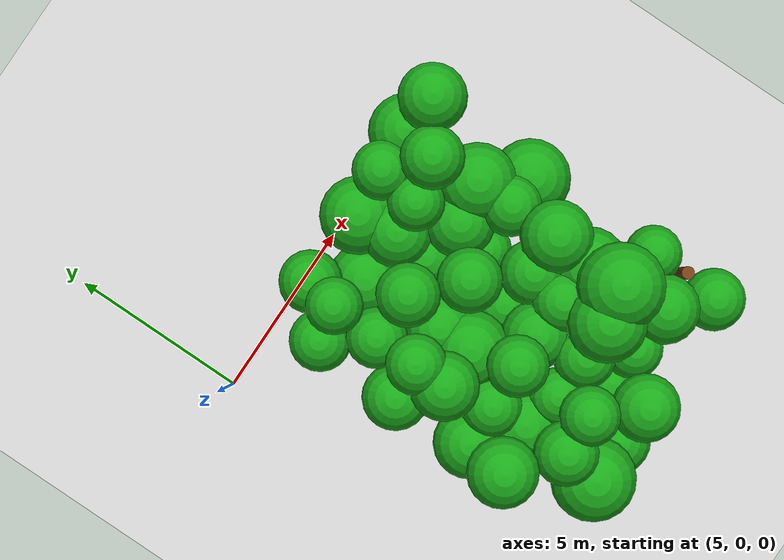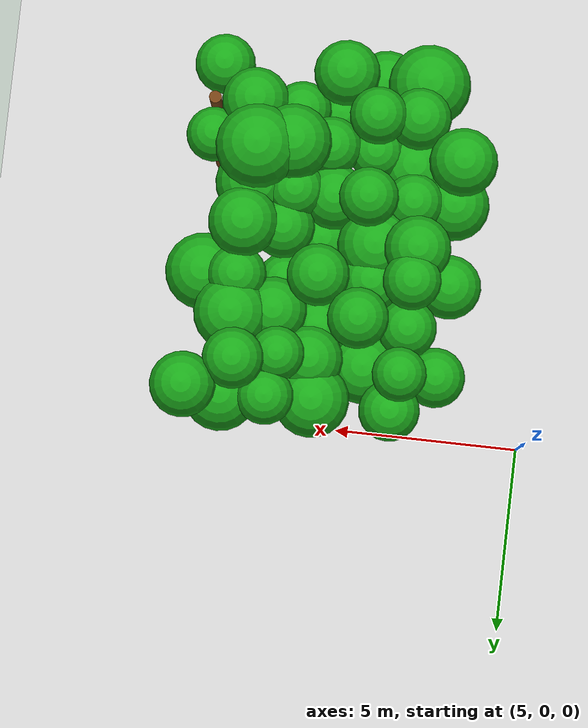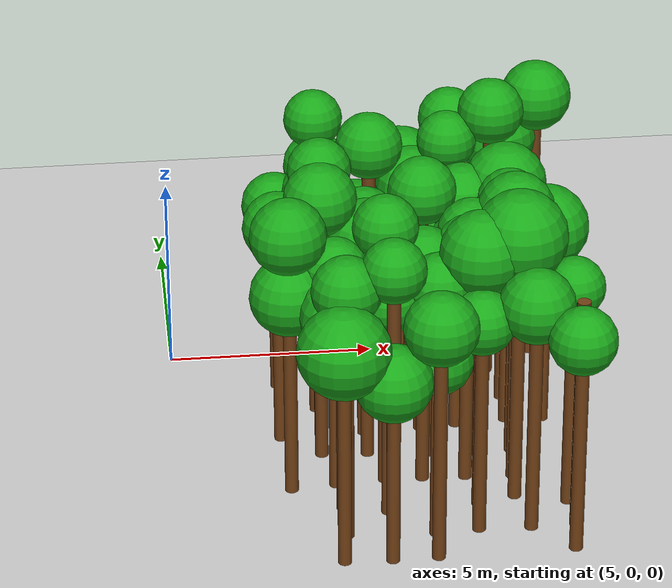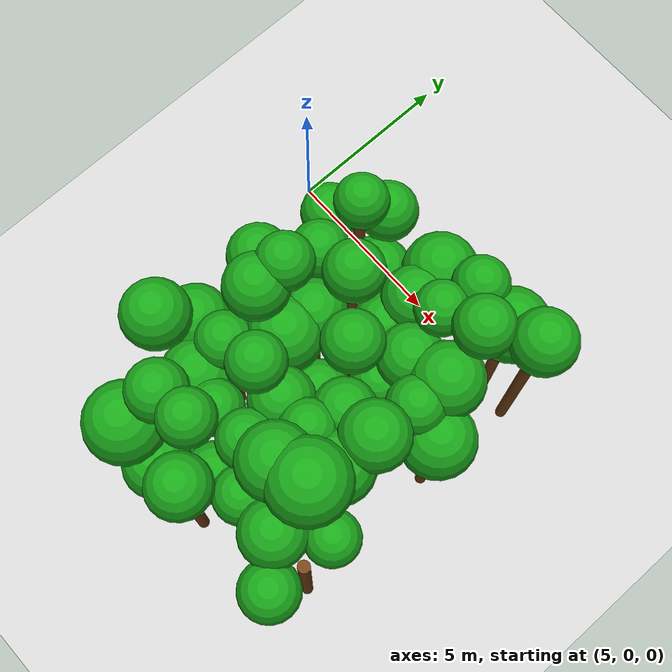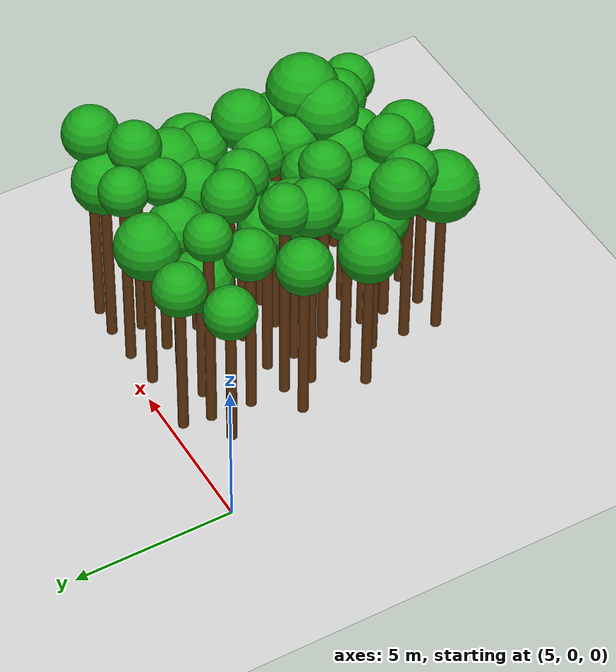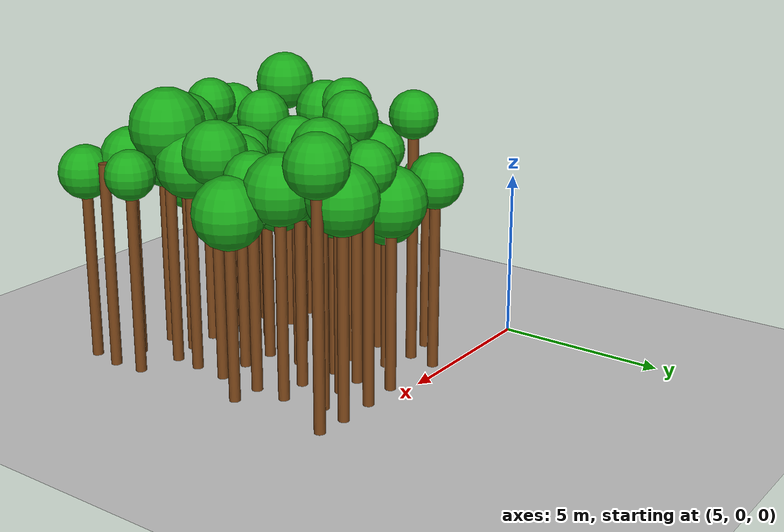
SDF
<sdf version="1.6">
 <world name="forest_world">
  <include><uri>model://sun</uri></include>
  <include><uri>model://ground_plane</uri></include>
  <model name="tree_1868_leaf">
   <static>true</static>
   <pose>7.45 -6.83 7.50 0 0 0</pose>
   <link name="link">
    <collision name="collision"><geometry><sphere><radius>0.88</radius></sphere></geometry></collision>
    <visual name="visual">
     <geometry><sphere><radius>0.88</radius></sphere></geometry>
     <material><ambient>0.05 0.45 0.05 1</ambient><diffuse>0.10 0.65 0.10 1</diffuse></material>
    </visual>
   </link>
  </model>
  <model name="tree_1869_trunk">
   <static>true</static>
   <pose>7.53 -5.94 2.41 0 0 0</pose>
   <link name="link">
    <collision name="collision">
     <geometry><cylinder><radius>0.16</radius><length>4.82</length></cylinder></geometry>
    </collision>
    <visual name="visual">
     <geometry><cylinder><radius>0.16</radius><length>4.82</length></cylinder></geometry>
     <material><ambient>0.35 0.20 0.05 1</ambient><diffuse>0.45 0.25 0.08 1</diffuse></material>
    </visual>
   </link>
  </model>
  <model name="tree_1869_leaf">
   <static>true</static>
   <pose>7.53 -5.94 5.38 0 0 0</pose>
   <link name="link">
    <collision name="collision"><geometry><sphere><radius>0.93</radius></sphere></geometry></collision>
    <visual name="visual">
     <geometry><sphere><radius>0.93</radius></sphere></geometry>
     <material><ambient>0.05 0.45 0.05 1</ambient><diffuse>0.10 0.65 0.10 1</diffuse></material>
    </visual>
   </link>
  </model>
  <model name="tree_1871_trunk">
   <static>true</static>
   <pose>7.45 -3.75 2.72 0 0 0</pose>
   <link name="link">
    <collision name="collision">
     <geometry><cylinder><radius>0.16</radius><length>5.43</length></cylinder></geometry>
    </collision>
    <visual name="visual">
     <geometry><cylinder><radius>0.16</radius><length>5.43</length></cylinder></geometry>
     <material><ambient>0.35 0.20 0.05 1</ambient><diffuse>0.45 0.25 0.08 1</diffuse></material>
    </visual>
   </link>
  </model>
  <model name="tree_1871_leaf">
   <static>true</static>
   <pose>7.45 -3.75 5.94 0 0 0</pose>
   <link name="link">
    <collision name="collision"><geometry><sphere><radius>0.84</radius></sphere></geometry></collision>
    <visual name="visual">
     <geometry><sphere><radius>0.84</radius></sphere></geometry>
     <material><ambient>0.05 0.45 0.05 1</ambient><diffuse>0.10 0.65 0.10 1</diffuse></material>
    </visual>
   </link>
  </model>
  <model name="tree_1873_trunk">
   <static>true</static>
   <pose>7.54 -1.42 2.36 0 0 0</pose>
   <link name="link">
    <collision name="collision">
     <geometry><cylinder><radius>0.16</radius><length>4.71</length></cylinder></geometry>
    </collision>
    <visual name="visual">
     <geometry><cylinder><radius>0.16</radius><length>4.71</length></cylinder></geometry>
     <material><ambient>0.35 0.20 0.05 1</ambient><diffuse>0.45 0.25 0.08 1</diffuse></material>
    </visual>
   </link>
  </model>
  <model name="tree_1873_leaf">
   <static>true</static>
   <pose>7.54 -1.42 5.18 0 0 0</pose>
   <link name="link">
    <collision name="collision"><geometry><sphere><radius>0.79</radius></sphere></geometry></collision>
    <visual name="visual">
     <geometry><sphere><radius>0.79</radius></sphere></geometry>
     <material><ambient>0.05 0.45 0.05 1</ambient><diffuse>0.10 0.65 0.10 1</diffuse></material>
    </visual>
   </link>
  </model>
  <model name="tree_1921_trunk">
   <static>true</static>
   <pose>8.50 -8.96 2.53 0 0 0</pose>
   <link name="link">
    <collision name="collision">
     <geometry><cylinder><radius>0.16</radius><length>5.06</length></cylinder></geometry>
    </collision>
    <visual name="visual">
     <geometry><cylinder><radius>0.16</radius><length>5.06</length></cylinder></geometry>
     <material><ambient>0.35 0.20 0.05 1</ambient><diffuse>0.45 0.25 0.08 1</diffuse></material>
    </visual>
   </link>
  </model>
  <model name="tree_1921_leaf">
   <static>true</static>
   <pose>8.50 -8.96 5.71 0 0 0</pose>
   <link name="link">
    <collision name="collision"><geometry><sphere><radius>1.08</radius></sphere></geometry></collision>
    <visual name="visual">
     <geometry><sphere><radius>1.08</radius></sphere></geometry>
     <material><ambient>0.05 0.45 0.05 1</ambient><diffuse>0.10 0.65 0.10 1</diffuse></material>
    </visual>
   </link>
  </model>
  <model name="tree_1922_trunk">
   <static>true</static>
   <pose>8.66 -7.93 3.09 0 0 0</pose>
   <link name="link">
    <collision name="collision">
     <geometry><cylinder><radius>0.16</radius><length>6.19</length></cylinder></geometry>
    </collision>
    <visual name="visual">
     <geometry><cylinder><radius>0.16</radius><length>6.19</length></cylinder></geometry>
     <material><ambient>0.35 0.20 0.05 1</ambient><diffuse>0.45 0.25 0.08 1</diffuse></material>
    </visual>
   </link>
  </model>
  <model name="tree_1922_leaf">
   <static>true</static>
   <pose>8.66 -7.93 6.67 0 0 0</pose>
   <link name="link">
    <collision name="collision"><geometry><sphere><radius>0.81</radius></sphere></geometry></collision>
    <visual name="visual">
     <geometry><sphere><radius>0.81</radius></sphere></geometry>
     <material><ambient>0.05 0.45 0.05 1</ambient><diffuse>0.10 0.65 0.10 1</diffuse></material>
    </visual>
   </link>
  </model>
  <model name="tree_1923_trunk">
   <static>true</static>
   <pose>8.67 -6.82 2.36 0 0 0</pose>
   <link name="link">
    <collision name="collision">
     <geometry><cylinder><radius>0.16</radius><length>4.73</length></cylinder></geometry>
    </collision>
    <visual name="visual">
     <geometry><cylinder><radius>0.16</radius><length>4.73</length></cylinder></geometry>
     <material><ambient>0.35 0.20 0.05 1</ambient><diffuse>0.45 0.25 0.08 1</diffuse></material>
    </visual>
   </link>
  </model>
  <model name="tree_1923_leaf">
   <static>true</static>
   <pose>8.67 -6.82 5.32 0 0 0</pose>
   <link name="link">
    <collision name="collision"><geometry><sphere><radius>0.99</radius></sphere></geometry></collision>
    <visual name="visual">
     <geometry><sphere><radius>0.99</radius></sphere></geometry>
     <material><ambient>0.05 0.45 0.05 1</ambient><diffuse>0.10 0.65 0.10 1</diffuse></material>
    </visual>
   </link>
  </model>
  <model name="tree_1924_trunk">
   <static>true</static>
   <pose>8.59 -5.84 2.75 0 0 0</pose>
   <link name="link">
    <collision name="collision">
     <geometry><cylinder><radius>0.16</radius><length>5.50</length></cylinder></geometry>
    </collision>
    <visual name="visual">
     <geometry><cylinder><radius>0.16</radius><length>5.50</length></cylinder></geometry>
     <material><ambient>0.35 0.20 0.05 1</ambient><diffuse>0.45 0.25 0.08 1</diffuse></material>
    </visual>
   </link>
  </model>
  <model name="tree_1924_leaf">
   <static>true</static>
   <pose>8.59 -5.84 5.96 0 0 0</pose>
   <link name="link">
    <collision name="collision"><geometry><sphere><radius>0.77</radius></sphere></geometry></collision>
    <visual name="visual">
     <geometry><sphere><radius>0.77</radius></sphere></geometry>
     <material><ambient>0.05 0.45 0.05 1</ambient><diffuse>0.10 0.65 0.10 1</diffuse></material>
    </visual>
   </link>
  </model>
  <model name="tree_1925_trunk">
   <static>true</static>
   <pose>8.37 -4.54 3.29 0 0 0</pose>
   <link name="link">
    <collision name="collision">
     <geometry><cylinder><radius>0.16</radius><length>6.57</length></cylinder></geometry>
    </collision>
    <visual name="visual">
     <geometry><cylinder><radius>0.16</radius><length>6.57</length></cylinder></geometry>
     <material><ambient>0.35 0.20 0.05 1</ambient><diffuse>0.45 0.25 0.08 1</diffuse></material>
    </visual>
   </link>
  </model>
  <model name="tree_1925_leaf">
   <static>true</static>
   <pose>8.37 -4.54 7.09 0 0 0</pose>
   <link name="link">
    <collision name="collision"><geometry><sphere><radius>0.86</radius></sphere></geometry></collision>
    <visual name="visual">
     <geometry><sphere><radius>0.86</radius></sphere></geometry>
     <material><ambient>0.05 0.45 0.05 1</ambient><diffuse>0.10 0.65 0.10 1</diffuse></material>
    </visual>
   </link>
  </model>
  <model name="tree_1926_trunk">
   <static>true</static>
   <pose>8.43 -3.68 3.47 0 0 0</pose>
   <link name="link">
    <collision name="collision">
     <geometry><cylinder><radius>0.16</radius><length>6.93</length></cylinder></geometry>
    </collision>
    <visual name="visual">
     <geometry><cylinder><radius>0.16</radius><length>6.93</length></cylinder></geometry>
     <material><ambient>0.35 0.20 0.05 1</ambient><diffuse>0.45 0.25 0.08 1</diffuse></material>
    </visual>
   </link>
  </model>
  <model name="tree_1926_leaf">
   <static>true</static>
   <pose>8.43 -3.68 7.38 0 0 0</pose>
   <link name="link">
    <collision name="collision"><geometry><sphere><radius>0.75</radius></sphere></geometry></collision>
    <visual name="visual">
     <geometry><sphere><radius>0.75</radius></sphere></geometry>
     <material><ambient>0.05 0.45 0.05 1</ambient><diffuse>0.10 0.65 0.10 1</diffuse></material>
    </visual>
   </link>
  </model>
  <model name="tree_1927_trunk">
   <static>true</static>
   <pose>8.41 -2.55 2.85 0 0 0</pose>
   <link name="link">
    <collision name="collision">
     <geometry><cylinder><radius>0.16</radius><length>5.70</length></cylinder></geometry>
    </collision>
    <visual name="visual">
     <geometry><cylinder><radius>0.16</radius><length>5.70</length></cylinder></geometry>
     <material><ambient>0.35 0.20 0.05 1</ambient><diffuse>0.45 0.25 0.08 1</diffuse></material>
    </visual>
   </link>
  </model>
  <model name="tree_1927_leaf">
   <static>true</static>
   <pose>8.41 -2.55 6.16 0 0 0</pose>
   <link name="link">
    <collision name="collision"><geometry><sphere><radius>0.77</radius></sphere></geometry></collision>
    <visual name="visual">
     <geometry><sphere><radius>0.77</radius></sphere></geometry>
     <material><ambient>0.05 0.45 0.05 1</ambient><diffuse>0.10 0.65 0.10 1</diffuse></material>
    </visual>
   </link>
  </model>
  <model name="tree_1928_trunk">
   <static>true</static>
   <pose>8.50 -1.27 3.49 0 0 0</pose>
   <link name="link">
    <collision name="collision">
     <geometry><cylinder><radius>0.16</radius><length>6.98</length></cylinder></geometry>
    </collision>
    <visual name="visual">
     <geometry><cylinder><radius>0.16</radius><length>6.98</length></cylinder></geometry>
     <material><ambient>0.35 0.20 0.05 1</ambient><diffuse>0.45 0.25 0.08 1</diffuse></material>
    </visual>
   </link>
  </model>
  <model name="tree_1928_leaf">
   <static>true</static>
   <pose>8.50 -1.27 7.40 0 0 0</pose>
   <link name="link">
    <collision name="collision"><geometry><sphere><radius>0.70</radius></sphere></geometry></collision>
    <visual name="visual">
     <geometry><sphere><radius>0.70</radius></sphere></geometry>
     <material><ambient>0.05 0.45 0.05 1</ambient><diffuse>0.10 0.65 0.10 1</diffuse></material>
    </visual>
   </link>
  </model>
  <model name="tree_1929_trunk">
   <static>true</static>
   <pose>8.64 -0.41 2.58 0 0 0</pose>
   <link name="link">
    <collision name="collision">
     <geometry><cylinder><radius>0.16</radius><length>5.16</length></cylinder></geometry>
    </collision>
    <visual name="visual">
     <geometry><cylinder><radius>0.16</radius><length>5.16</length></cylinder></geometry>
     <material><ambient>0.35 0.20 0.05 1</ambient><diffuse>0.45 0.25 0.08 1</diffuse></material>
    </visual>
   </link>
  </model>
  <model name="tree_1929_leaf">
   <static>true</static>
   <pose>8.64 -0.41 5.64 0 0 0</pose>
   <link name="link">
    <collision name="collision"><geometry><sphere><radius>0.80</radius></sphere></geometry></collision>
    <visual name="visual">
     <geometry><sphere><radius>0.80</radius></sphere></geometry>
     <material><ambient>0.05 0.45 0.05 1</ambient><diffuse>0.10 0.65 0.10 1</diffuse></material>
    </visual>
   </link>
  </model>
  <model name="tree_1976_trunk">
   <static>true</static>
   <pose>9.61 -9.00 2.15 0 0 0</pose>
   <link name="link">
    <collision name="collision">
     <geometry><cylinder><radius>0.16</radius><length>4.31</length></cylinder></geometry>
    </collision>
    <visual name="visual">
     <geometry><cylinder><radius>0.16</radius><length>4.31</length></cylinder></geometry>
     <material><ambient>0.35 0.20 0.05 1</ambient><diffuse>0.45 0.25 0.08 1</diffuse></material>
    </visual>
   </link>
  </model>
  <model name="tree_1976_leaf">
   <static>true</static>
   <pose>9.61 -9.00 4.85 0 0 0</pose>
   <link name="link">
    <collision name="collision"><geometry><sphere><radius>0.90</radius></sphere></geometry></collision>
    <visual name="visual">
     <geometry><sphere><radius>0.90</radius></sphere></geometry>
     <material><ambient>0.05 0.45 0.05 1</ambient><diffuse>0.10 0.65 0.10 1</diffuse></material>
    </visual>
   </link>
  </model>
  <model name="tree_1977_trunk">
   <static>true</static>
   <pose>9.73 -7.85 3.31 0 0 0</pose>
   <link name="link">
    <collision name="collision">
     <geometry><cylinder><radius>0.16</radius><length>6.63</length></cylinder></geometry>
    </collision>
    <visual name="visual">
     <geometry><cylinder><radius>0.16</radius><length>6.63</length></cylinder></geometry>
     <material><ambient>0.35 0.20 0.05 1</ambient><diffuse>0.45 0.25 0.08 1</diffuse></material>
    </visual>
   </link>
  </model>
  <model name="tree_1977_leaf">
   <static>true</static>
   <pose>9.73 -7.85 7.08 0 0 0</pose>
   <link name="link">
    <collision name="collision"><geometry><sphere><radius>0.75</radius></sphere></geometry></collision>
    <visual name="visual">
     <geometry><sphere><radius>0.75</radius></sphere></geometry>
     <material><ambient>0.05 0.45 0.05 1</ambient><diffuse>0.10 0.65 0.10 1</diffuse></material>
    </visual>
   </link>
  </model>
  <model name="tree_1978_trunk">
   <static>true</static>
   <pose>9.70 -7.07 2.68 0 0 0</pose>
   <link name="link">
    <collision name="collision">
     <geometry><cylinder><radius>0.16</radius><length>5.36</length></cylinder></geometry>
    </collision>
    <visual name="visual">
     <geometry><cylinder><radius>0.16</radius><length>5.36</length></cylinder></geometry>
     <material><ambient>0.35 0.20 0.05 1</ambient><diffuse>0.45 0.25 0.08 1</diffuse></material>
    </visual>
   </link>
  </model>
  <model name="tree_1978_leaf">
   <static>true</static>
   <pose>9.70 -7.07 5.80 0 0 0</pose>
   <link name="link">
    <collision name="collision"><geometry><sphere><radius>0.73</radius></sphere></geometry></collision>
    <visual name="visual">
     <geometry><sphere><radius>0.73</radius></sphere></geometry>
     <material><ambient>0.05 0.45 0.05 1</ambient><diffuse>0.10 0.65 0.10 1</diffuse></material>
    </visual>
   </link>
  </model>
  <model name="tree_1979_trunk">
   <static>true</static>
   <pose>9.76 -5.75 3.25 0 0 0</pose>
   <link name="link">
    <collision name="collision">
     <geometry><cylinder><radius>0.16</radius><length>6.50</length></cylinder></geometry>
    </collision>
    <visual name="visual">
     <geometry><cylinder><radius>0.16</radius><length>6.50</length></cylinder></geometry>
     <material><ambient>0.35 0.20 0.05 1</ambient><diffuse>0.45 0.25 0.08 1</diffuse></material>
    </visual>
   </link>
  </model>
  <model name="tree_1979_leaf">
   <static>true</static>
   <pose>9.76 -5.75 6.97 0 0 0</pose>
   <link name="link">
    <collision name="collision"><geometry><sphere><radius>0.77</radius></sphere></geometry></collision>
    <visual name="visual">
     <geometry><sphere><radius>0.77</radius></sphere></geometry>
     <material><ambient>0.05 0.45 0.05 1</ambient><diffuse>0.10 0.65 0.10 1</diffuse></material>
    </visual>
   </link>
  </model>
  <model name="tree_1980_trunk">
   <static>true</static>
   <pose>9.46 -4.61 2.69 0 0 0</pose>
   <link name="link">
    <collision name="collision">
     <geometry><cylinder><radius>0.16</radius><length>5.37</length></cylinder></geometry>
    </collision>
    <visual name="visual">
     <geometry><cylinder><radius>0.16</radius><length>5.37</length></cylinder></geometry>
     <material><ambient>0.35 0.20 0.05 1</ambient><diffuse>0.45 0.25 0.08 1</diffuse></material>
    </visual>
   </link>
  </model>
  <model name="tree_1980_leaf">
   <static>true</static>
   <pose>9.46 -4.61 5.97 0 0 0</pose>
   <link name="link">
    <collision name="collision"><geometry><sphere><radius>0.99</radius></sphere></geometry></collision>
    <visual name="visual">
     <geometry><sphere><radius>0.99</radius></sphere></geometry>
     <material><ambient>0.05 0.45 0.05 1</ambient><diffuse>0.10 0.65 0.10 1</diffuse></material>
    </visual>
   </link>
  </model>
  <model name="tree_1981_trunk">
   <static>true</static>
   <pose>9.47 -3.70 2.69 0 0 0</pose>
   <link name="link">
    <collision name="collision">
     <geometry><cylinder><radius>0.16</radius><length>5.37</length></cylinder></geometry>
    </collision>
    <visual name="visual">
     <geometry><cylinder><radius>0.16</radius><length>5.37</length></cylinder></geometry>
     <material><ambient>0.35 0.20 0.05 1</ambient><diffuse>0.45 0.25 0.08 1</diffuse></material>
    </visual>
   </link>
  </model>
  <model name="tree_1981_leaf">
   <static>true</static>
   <pose>9.47 -3.70 5.89 0 0 0</pose>
   <link name="link">
    <collision name="collision"><geometry><sphere><radius>0.87</radius></sphere></geometry></collision>
    <visual name="visual">
     <geometry><sphere><radius>0.87</radius></sphere></geometry>
     <material><ambient>0.05 0.45 0.05 1</ambient><diffuse>0.10 0.65 0.10 1</diffuse></material>
    </visual>
   </link>
  </model>
  <model name="tree_1982_trunk">
   <static>true</static>
   <pose>9.70 -2.59 3.43 0 0 0</pose>
   <link name="link">
    <collision name="collision">
     <geometry><cylinder><radius>0.16</radius><length>6.86</length></cylinder></geometry>
    </collision>
    <visual name="visual">
     <geometry><cylinder><radius>0.16</radius><length>6.86</length></cylinder></geometry>
     <material><ambient>0.35 0.20 0.05 1</ambient><diffuse>0.45 0.25 0.08 1</diffuse></material>
    </visual>
   </link>
  </model>
  <model name="tree_1982_leaf">
   <static>true</static>
   <pose>9.70 -2.59 7.34 0 0 0</pose>
   <link name="link">
    <collision name="collision"><geometry><sphere><radius>0.79</radius></sphere></geometry></collision>
    <visual name="visual">
     <geometry><sphere><radius>0.79</radius></sphere></geometry>
     <material><ambient>0.05 0.45 0.05 1</ambient><diffuse>0.10 0.65 0.10 1</diffuse></material>
    </visual>
   </link>
  </model>
  <model name="tree_1983_trunk">
   <static>true</static>
   <pose>9.45 -1.51 2.08 0 0 0</pose>
   <link name="link">
    <collision name="collision">
     <geometry><cylinder><radius>0.16</radius><length>4.17</length></cylinder></geometry>
    </collision>
    <visual name="visual">
     <geometry><cylinder><radius>0.16</radius><length>4.17</length></cylinder></geometry>
     <material><ambient>0.35 0.20 0.05 1</ambient><diffuse>0.45 0.25 0.08 1</diffuse></material>
    </visual>
   </link>
  </model>
  <model name="tree_1983_leaf">
   <static>true</static>
   <pose>9.45 -1.51 4.74 0 0 0</pose>
   <link name="link">
    <collision name="collision"><geometry><sphere><radius>0.96</radius></sphere></geometry></collision>
    <visual name="visual">
     <geometry><sphere><radius>0.96</radius></sphere></geometry>
     <material><ambient>0.05 0.45 0.05 1</ambient><diffuse>0.10 0.65 0.10 1</diffuse></material>
    </visual>
   </link>
  </model>
  <model name="tree_2031_trunk">
   <static>true</static>
   <pose>10.67 -8.99 2.85 0 0 0</pose>
   <link name="link">
    <collision name="collision">
     <geometry><cylinder><radius>0.16</radius><length>5.70</length></cylinder></geometry>
    </collision>
    <visual name="visual">
     <geometry><cylinder><radius>0.16</radius><length>5.70</length></cylinder></geometry>
     <material><ambient>0.35 0.20 0.05 1</ambient><diffuse>0.45 0.25 0.08 1</diffuse></material>
    </visual>
   </link>
  </model>
  <model name="tree_2031_leaf">
   <static>true</static>
   <pose>10.67 -8.99 6.21 0 0 0</pose>
   <link name="link">
    <collision name="collision"><geometry><sphere><radius>0.86</radius></sphere></geometry></collision>
    <visual name="visual">
     <geometry><sphere><radius>0.86</radius></sphere></geometry>
     <material><ambient>0.05 0.45 0.05 1</ambient><diffuse>0.10 0.65 0.10 1</diffuse></material>
    </visual>
   </link>
  </model>
  <model name="tree_2032_trunk">
   <static>true</static>
   <pose>10.72 -8.06 2.16 0 0 0</pose>
   <link name="link">
    <collision name="collision">
     <geometry><cylinder><radius>0.16</radius><length>4.31</length></cylinder></geometry>
    </collision>
    <visual name="visual">
     <geometry><cylinder><radius>0.16</radius><length>4.31</length></cylinder></geometry>
     <material><ambient>0.35 0.20 0.05 1</ambient><diffuse>0.45 0.25 0.08 1</diffuse></material>
    </visual>
   </link>
  </model>
  <model name="tree_2032_leaf">
   <static>true</static>
   <pose>10.72 -8.06 4.80 0 0 0</pose>
   <link name="link">
    <collision name="collision"><geometry><sphere><radius>0.81</radius></sphere></geometry></collision>
    <visual name="visual">
     <geometry><sphere><radius>0.81</radius></sphere></geometry>
     <material><ambient>0.05 0.45 0.05 1</ambient><diffuse>0.10 0.65 0.10 1</diffuse></material>
    </visual>
   </link>
  </model>
  <model name="tree_2033_trunk">
   <static>true</static>
   <pose>10.86 -7.05 2.82 0 0 0</pose>
   <link name="link">
    <collision name="collision">
     <geometry><cylinder><radius>0.16</radius><length>5.65</length></cylinder></geometry>
    </collision>
    <visual name="visual">
     <geometry><cylinder><radius>0.16</radius><length>5.65</length></cylinder></geometry>
     <material><ambient>0.35 0.20 0.05 1</ambient><diffuse>0.45 0.25 0.08 1</diffuse></material>
    </visual>
   </link>
  </model>
  <model name="tree_2033_leaf">
   <static>true</static>
   <pose>10.86 -7.05 6.12 0 0 0</pose>
   <link name="link">
    <collision name="collision"><geometry><sphere><radius>0.78</radius></sphere></geometry></collision>
    <visual name="visual">
     <geometry><sphere><radius>0.78</radius></sphere></geometry>
     <material><ambient>0.05 0.45 0.05 1</ambient><diffuse>0.10 0.65 0.10 1</diffuse></material>
    </visual>
   </link>
  </model>
  <model name="tree_2034_trunk">
   <static>true</static>
   <pose>10.65 -5.77 2.74 0 0 0</pose>
   <link name="link">
    <collision name="collision">
     <geometry><cylinder><radius>0.16</radius><length>5.47</length></cylinder></geometry>
    </collision>
    <visual name="visual">
     <geometry><cylinder><radius>0.16</radius><length>5.47</length></cylinder></geometry>
     <material><ambient>0.35 0.20 0.05 1</ambient><diffuse>0.45 0.25 0.08 1</diffuse></material>
    </visual>
   </link>
  </model>
  <model name="tree_2034_leaf">
   <static>true</static>
   <pose>10.65 -5.77 5.99 0 0 0</pose>
   <link name="link">
    <collision name="collision"><geometry><sphere><radius>0.86</radius></sphere></geometry></collision>
    <visual name="visual">
     <geometry><sphere><radius>0.86</radius></sphere></geometry>
     <material><ambient>0.05 0.45 0.05 1</ambient><diffuse>0.10 0.65 0.10 1</diffuse></material>
    </visual>
   </link>
  </model>
  <model name="tree_2035_trunk">
   <static>true</static>
   <pose>10.87 -4.75 2.16 0 0 0</pose>
   <link name="link">
    <collision name="collision">
     <geometry><cylinder><radius>0.16</radius><length>4.33</length></cylinder></geometry>
    </collision>
    <visual name="visual">
     <geometry><cylinder><radius>0.16</radius><length>4.33</length></cylinder></geometry>
     <material><ambient>0.35 0.20 0.05 1</ambient><diffuse>0.45 0.25 0.08 1</diffuse></material>
    </visual>
   </link>
  </model>
  <model name="tree_2035_leaf">
   <static>true</static>
   <pose>10.87 -4.75 4.82 0 0 0</pose>
   <link name="link">
    <collision name="collision"><geometry><sphere><radius>0.82</radius></sphere></geometry></collision>
    <visual name="visual">
     <geometry><sphere><radius>0.82</radius></sphere></geometry>
     <material><ambient>0.05 0.45 0.05 1</ambient><diffuse>0.10 0.65 0.10 1</diffuse></material>
    </visual>
   </link>
  </model>
  <model name="tree_2036_trunk">
   <static>true</static>
   <pose>10.84 -3.64 3.09 0 0 0</pose>
   <link name="link">
    <collision name="collision">
     <geometry><cylinder><radius>0.16</radius><length>6.17</length></cylinder></geometry>
    </collision>
    <visual name="visual">
     <geometry><cylinder><radius>0.16</radius><length>6.17</length></cylinder></geometry>
     <material><ambient>0.35 0.20 0.05 1</ambient><diffuse>0.45 0.25 0.08 1</diffuse></material>
    </visual>
   </link>
  </model>
  <model name="tree_2036_leaf">
   <static>true</static>
   <pose>10.84 -3.64 6.66 0 0 0</pose>
   <link name="link">
    <collision name="collision"><geometry><sphere><radius>0.81</radius></sphere></geometry></collision>
    <visual name="visual">
     <geometry><sphere><radius>0.81</radius></sphere></geometry>
     <material><ambient>0.05 0.45 0.05 1</ambient><diffuse>0.10 0.65 0.10 1</diffuse></material>
    </visual>
   </link>
  </model>
  <model name="tree_2037_trunk">
   <static>true</static>
   <pose>10.74 -2.41 2.26 0 0 0</pose>
   <link name="link">
    <collision name="collision">
     <geometry><cylinder><radius>0.16</radius><length>4.52</length></cylinder></geometry>
    </collision>
    <visual name="visual">
     <geometry><cylinder><radius>0.16</radius><length>4.52</length></cylinder></geometry>
     <material><ambient>0.35 0.20 0.05 1</ambient><diffuse>0.45 0.25 0.08 1</diffuse></material>
    </visual>
   </link>
  </model>
  <model name="tree_2037_leaf">
   <static>true</static>
   <pose>10.74 -2.41 5.04 0 0 0</pose>
   <link name="link">
    <collision name="collision"><geometry><sphere><radius>0.87</radius></sphere></geometry></collision>
    <visual name="visual">
     <geometry><sphere><radius>0.87</radius></sphere></geometry>
     <material><ambient>0.05 0.45 0.05 1</ambient><diffuse>0.10 0.65 0.10 1</diffuse></material>
    </visual>
   </link>
  </model>
  <model name="tree_2038_trunk">
   <static>true</static>
   <pose>10.85 -1.52 2.58 0 0 0</pose>
   <link name="link">
    <collision name="collision">
     <geometry><cylinder><radius>0.16</radius><length>5.15</length></cylinder></geometry>
    </collision>
    <visual name="visual">
     <geometry><cylinder><radius>0.16</radius><length>5.15</length></cylinder></geometry>
     <material><ambient>0.35 0.20 0.05 1</ambient><diffuse>0.45 0.25 0.08 1</diffuse></material>
    </visual>
   </link>
  </model>
  <model name="tree_2038_leaf">
   <static>true</static>
   <pose>10.85 -1.52 5.68 0 0 0</pose>
   <link name="link">
    <collision name="collision"><geometry><sphere><radius>0.88</radius></sphere></geometry></collision>
    <visual name="visual">
     <geometry><sphere><radius>0.88</radius></sphere></geometry>
     <material><ambient>0.05 0.45 0.05 1</ambient><diffuse>0.10 0.65 0.10 1</diffuse></material>
    </visual>
   </link>
  </model>
  <model name="tree_2039_trunk">
   <static>true</static>
   <pose>10.68 -0.48 2.47 0 0 0</pose>
   <link name="link">
    <collision name="collision">
     <geometry><cylinder><radius>0.16</radius><length>4.94</length></cylinder></geometry>
    </collision>
    <visual name="visual">
     <geometry><cylinder><radius>0.16</radius><length>4.94</length></cylinder></geometry>
     <material><ambient>0.35 0.20 0.05 1</ambient><diffuse>0.45 0.25 0.08 1</diffuse></material>
    </visual>
   </link>
  </model>
  <model name="tree_2039_leaf">
   <static>true</static>
   <pose>10.68 -0.48 5.53 0 0 0</pose>
   <link name="link">
    <collision name="collision"><geometry><sphere><radius>0.99</radius></sphere></geometry></collision>
    <visual name="visual">
     <geometry><sphere><radius>0.99</radius></sphere></geometry>
     <material><ambient>0.05 0.45 0.05 1</ambient><diffuse>0.10 0.65 0.10 1</diffuse></material>
    </visual>
   </link>
  </model>
  <model name="tree_2087_trunk">
   <static>true</static>
   <pose>11.73 -7.97 2.61 0 0 0</pose>
   <link name="link">
    <collision name="collision">
     <geometry><cylinder><radius>0.16</radius><length>5.23</length></cylinder></geometry>
    </collision>
    <visual name="visual">
     <geometry><cylinder><radius>0.16</radius><length>5.23</length></cylinder></geometry>
     <material><ambient>0.35 0.20 0.05 1</ambient><diffuse>0.45 0.25 0.08 1</diffuse></material>
    </visual>
   </link>
  </model>
  <model name="tree_2087_leaf">
   <static>true</static>
   <pose>11.73 -7.97 5.68 0 0 0</pose>
   <link name="link">
    <collision name="collision"><geometry><sphere><radius>0.76</radius></sphere></geometry></collision>
    <visual name="visual">
     <geometry><sphere><radius>0.76</radius></sphere></geometry>
     <material><ambient>0.05 0.45 0.05 1</ambient><diffuse>0.10 0.65 0.10 1</diffuse></material>
    </visual>
   </link>
  </model>
  <model name="tree_2088_trunk">
   <static>true</static>
   <pose>11.84 -6.96 3.15 0 0 0</pose>
   <link name="link">
    <collision name="collision">
     <geometry><cylinder><radius>0.16</radius><length>6.29</length></cylinder></geometry>
    </collision>
    <visual name="visual">
     <geometry><cylinder><radius>0.16</radius><length>6.29</length></cylinder></geometry>
     <material><ambient>0.35 0.20 0.05 1</ambient><diffuse>0.45 0.25 0.08 1</diffuse></material>
    </visual>
   </link>
  </model>
  <model name="tree_2088_leaf">
   <static>true</static>
   <pose>11.84 -6.96 6.89 0 0 0</pose>
   <link name="link">
    <collision name="collision"><geometry><sphere><radius>0.99</radius></sphere></geometry></collision>
    <visual name="visual">
     <geometry><sphere><radius>0.99</radius></sphere></geometry>
     <material><ambient>0.05 0.45 0.05 1</ambient><diffuse>0.10 0.65 0.10 1</diffuse></material>
    </visual>
   </link>
  </model>
  <model name="tree_2089_trunk">
   <static>true</static>
   <pose>11.67 -5.81 2.96 0 0 0</pose>
   <link name="link">
    <collision name="collision">
     <geometry><cylinder><radius>0.16</radius><length>5.92</length></cylinder></geometry>
    </collision>
    <visual name="visual">
     <geometry><cylinder><radius>0.16</radius><length>5.92</length></cylinder></geometry>
     <material><ambient>0.35 0.20 0.05 1</ambient><diffuse>0.45 0.25 0.08 1</diffuse></material>
    </visual>
   </link>
  </model>
  <model name="tree_2089_leaf">
   <static>true</static>
   <pose>11.67 -5.81 6.37 0 0 0</pose>
   <link name="link">
    <collision name="collision"><geometry><sphere><radius>0.75</radius></sphere></geometry></collision>
    <visual name="visual">
     <geometry><sphere><radius>0.75</radius></sphere></geometry>
     <material><ambient>0.05 0.45 0.05 1</ambient><diffuse>0.10 0.65 0.10 1</diffuse></material>
    </visual>
   </link>
  </model>
  <model name="tree_2090_trunk">
   <static>true</static>
   <pose>11.88 -4.83 2.84 0 0 0</pose>
   <link name="link">
    <collision name="collision">
     <geometry><cylinder><radius>0.16</radius><length>5.67</length></cylinder></geometry>
    </collision>
    <visual name="visual">
     <geometry><cylinder><radius>0.16</radius><length>5.67</length></cylinder></geometry>
     <material><ambient>0.35 0.20 0.05 1</ambient><diffuse>0.45 0.25 0.08 1</diffuse></material>
    </visual>
   </link>
  </model>
  <model name="tree_2090_leaf">
   <static>true</static>
   <pose>11.88 -4.83 6.16 0 0 0</pose>
   <link name="link">
    <collision name="collision"><geometry><sphere><radius>0.82</radius></sphere></geometry></collision>
    <visual name="visual">
     <geometry><sphere><radius>0.82</radius></sphere></geometry>
     <material><ambient>0.05 0.45 0.05 1</ambient><diffuse>0.10 0.65 0.10 1</diffuse></material>
    </visual>
   </link>
  </model>
  <model name="tree_2091_trunk">
   <static>true</static>
   <pose>11.71 -3.55 2.32 0 0 0</pose>
   <link name="link">
    <collision name="collision">
     <geometry><cylinder><radius>0.16</radius><length>4.65</length></cylinder></geometry>
    </collision>
    <visual name="visual">
     <geometry><cylinder><radius>0.16</radius><length>4.65</length></cylinder></geometry>
     <material><ambient>0.35 0.20 0.05 1</ambient><diffuse>0.45 0.25 0.08 1</diffuse></material>
    </visual>
   </link>
  </model>
  <model name="tree_2091_leaf">
   <static>true</static>
   <pose>11.71 -3.55 5.08 0 0 0</pose>
   <link name="link">
    <collision name="collision"><geometry><sphere><radius>0.72</radius></sphere></geometry></collision>
    <visual name="visual">
     <geometry><sphere><radius>0.72</radius></sphere></geometry>
     <material><ambient>0.05 0.45 0.05 1</ambient><diffuse>0.10 0.65 0.10 1</diffuse></material>
    </visual>
   </link>
  </model>
  <model name="tree_2092_trunk">
   <static>true</static>
   <pose>11.91 -2.67 2.63 0 0 0</pose>
   <link name="link">
    <collision name="collision">
     <geometry><cylinder><radius>0.16</radius><length>5.27</length></cylinder></geometry>
    </collision>
    <visual name="visual">
     <geometry><cylinder><radius>0.16</radius><length>5.27</length></cylinder></geometry>
     <material><ambient>0.35 0.20 0.05 1</ambient><diffuse>0.45 0.25 0.08 1</diffuse></material>
    </visual>
   </link>
  </model>
  <model name="tree_2092_leaf">
   <static>true</static>
   <pose>11.91 -2.67 5.80 0 0 0</pose>
   <link name="link">
    <collision name="collision"><geometry><sphere><radius>0.88</radius></sphere></geometry></collision>
    <visual name="visual">
     <geometry><sphere><radius>0.88</radius></sphere></geometry>
     <material><ambient>0.05 0.45 0.05 1</ambient><diffuse>0.10 0.65 0.10 1</diffuse></material>
    </visual>
   </link>
  </model>
  <model name="tree_2093_trunk">
   <static>true</static>
   <pose>11.67 -1.50 3.17 0 0 0</pose>
   <link name="link">
    <collision name="collision">
     <geometry><cylinder><radius>0.16</radius><length>6.35</length></cylinder></geometry>
    </collision>
    <visual name="visual">
     <geometry><cylinder><radius>0.16</radius><length>6.35</length></cylinder></geometry>
     <material><ambient>0.35 0.20 0.05 1</ambient><diffuse>0.45 0.25 0.08 1</diffuse></material>
    </visual>
   </link>
  </model>
  <model name="tree_2093_leaf">
   <static>true</static>
   <pose>11.67 -1.50 6.77 0 0 0</pose>
   <link name="link">
    <collision name="collision"><geometry><sphere><radius>0.71</radius></sphere></geometry></collision>
    <visual name="visual">
     <geometry><sphere><radius>0.71</radius></sphere></geometry>
     <material><ambient>0.05 0.45 0.05 1</ambient><diffuse>0.10 0.65 0.10 1</diffuse></material>
    </visual>
   </link>
  </model>
  <model name="tree_2094_trunk">
   <static>true</static>
   <pose>11.86 -0.38 3.16 0 0 0</pose>
   <link name="link">
    <collision name="collision">
     <geometry><cylinder><radius>0.16</radius><length>6.32</length></cylinder></geometry>
    </collision>
    <visual name="visual">
     <geometry><cylinder><radius>0.16</radius><length>6.32</length></cylinder></geometry>
     <material><ambient>0.35 0.20 0.05 1</ambient><diffuse>0.45 0.25 0.08 1</diffuse></material>
    </visual>
   </link>
  </model>
  <model name="tree_2094_leaf">
   <static>true</static>
   <pose>11.86 -0.38 6.76 0 0 0</pose>
   <link name="link">
    <collision name="collision"><geometry><sphere><radius>0.74</radius></sphere></geometry></collision>
    <visual name="visual">
     <geometry><sphere><radius>0.74</radius></sphere></geometry>
     <material><ambient>0.05 0.45 0.05 1</ambient><diffuse>0.10 0.65 0.10 1</diffuse></material>
    </visual>
   </link>
  </model>
  <model name="tree_2142_trunk">
   <static>true</static>
   <pose>12.95 -8.03 2.77 0 0 0</pose>
   <link name="link">
    <collision name="collision">
     <geometry><cylinder><radius>0.16</radius><length>5.54</length></cylinder></geometry>
    </collision>
    <visual name="visual">
     <geometry><cylinder><radius>0.16</radius><length>5.54</length></cylinder></geometry>
     <material><ambient>0.35 0.20 0.05 1</ambient><diffuse>0.45 0.25 0.08 1</diffuse></material>
    </visual>
   </link>
  </model>
  <model name="tree_2142_leaf">
   <static>true</static>
   <pose>12.95 -8.03 6.07 0 0 0</pose>
   <link name="link">
    <collision name="collision"><geometry><sphere><radius>0.88</radius></sphere></geometry></collision>
    <visual name="visual">
     <geometry><sphere><radius>0.88</radius></sphere></geometry>
     <material><ambient>0.05 0.45 0.05 1</ambient><diffuse>0.10 0.65 0.10 1</diffuse></material>
    </visual>
   </link>
  </model>
  <model name="tree_2143_trunk">
   <static>true</static>
   <pose>12.73 -6.73 3.24 0 0 0</pose>
   <link name="link">
    <collision name="collision">
     <geometry><cylinder><radius>0.16</radius><length>6.47</length></cylinder></geometry>
    </collision>
    <visual name="visual">
     <geometry><cylinder><radius>0.16</radius><length>6.47</length></cylinder></geometry>
     <material><ambient>0.35 0.20 0.05 1</ambient><diffuse>0.45 0.25 0.08 1</diffuse></material>
    </visual>
   </link>
  </model>
  <model name="tree_2143_leaf">
   <static>true</static>
   <pose>12.73 -6.73 7.13 0 0 0</pose>
   <link name="link">
    <collision name="collision"><geometry><sphere><radius>1.09</radius></sphere></geometry></collision>
    <visual name="visual">
     <geometry><sphere><radius>1.09</radius></sphere></geometry>
     <material><ambient>0.05 0.45 0.05 1</ambient><diffuse>0.10 0.65 0.10 1</diffuse></material>
    </visual>
   </link>
  </model>
  <model name="tree_2144_trunk">
   <static>true</static>
   <pose>12.80 -5.88 2.78 0 0 0</pose>
   <link name="link">
    <collision name="collision">
     <geometry><cylinder><radius>0.16</radius><length>5.57</length></cylinder></geometry>
    </collision>
    <visual name="visual">
     <geometry><cylinder><radius>0.16</radius><length>5.57</length></cylinder></geometry>
     <material><ambient>0.35 0.20 0.05 1</ambient><diffuse>0.45 0.25 0.08 1</diffuse></material>
    </visual>
   </link>
  </model>
  <model name="tree_2144_leaf">
   <static>true</static>
   <pose>12.80 -5.88 6.15 0 0 0</pose>
   <link name="link">
    <collision name="collision"><geometry><sphere><radius>0.96</radius></sphere></geometry></collision>
    <visual name="visual">
     <geometry><sphere><radius>0.96</radius></sphere></geometry>
     <material><ambient>0.05 0.45 0.05 1</ambient><diffuse>0.10 0.65 0.10 1</diffuse></material>
    </visual>
   </link>
  </model>
  <model name="tree_2145_trunk">
   <static>true</static>
   <pose>12.90 -4.80 3.07 0 0 0</pose>
   <link name="link">
    <collision name="collision">
     <geometry><cylinder><radius>0.16</radius><length>6.13</length></cylinder></geometry>
    </collision>
    <visual name="visual">
     <geometry><cylinder><radius>0.16</radius><length>6.13</length></cylinder></geometry>
     <material><ambient>0.35 0.20 0.05 1</ambient><diffuse>0.45 0.25 0.08 1</diffuse></material>
    </visual>
   </link>
  </model>
  <model name="tree_2145_leaf">
   <static>true</static>
   <pose>12.90 -4.80 6.68 0 0 0</pose>
   <link name="link">
    <collision name="collision"><geometry><sphere><radius>0.91</radius></sphere></geometry></collision>
    <visual name="visual">
     <geometry><sphere><radius>0.91</radius></sphere></geometry>
     <material><ambient>0.05 0.45 0.05 1</ambient><diffuse>0.10 0.65 0.10 1</diffuse></material>
    </visual>
   </link>
  </model>
  <model name="tree_2146_trunk">
   <static>true</static>
   <pose>12.94 -3.47 2.86 0 0 0</pose>
   <link name="link">
    <collision name="collision">
     <geometry><cylinder><radius>0.16</radius><length>5.71</length></cylinder></geometry>
    </collision>
    <visual name="visual">
     <geometry><cylinder><radius>0.16</radius><length>5.71</length></cylinder></geometry>
     <material><ambient>0.35 0.20 0.05 1</ambient><diffuse>0.45 0.25 0.08 1</diffuse></material>
    </visual>
   </link>
  </model>
  <model name="tree_2146_leaf">
   <static>true</static>
   <pose>12.94 -3.47 6.17 0 0 0</pose>
   <link name="link">
    <collision name="collision"><geometry><sphere><radius>0.77</radius></sphere></geometry></collision>
    <visual name="visual">
     <geometry><sphere><radius>0.77</radius></sphere></geometry>
     <material><ambient>0.05 0.45 0.05 1</ambient><diffuse>0.10 0.65 0.10 1</diffuse></material>
    </visual>
   </link>
  </model>
  <model name="tree_2147_trunk">
   <static>true</static>
   <pose>12.97 -2.47 2.74 0 0 0</pose>
   <link name="link">
    <collision name="collision">
     <geometry><cylinder><radius>0.16</radius><length>5.47</length></cylinder></geometry>
    </collision>
    <visual name="visual">
     <geometry><cylinder><radius>0.16</radius><length>5.47</length></cylinder></geometry>
     <material><ambient>0.35 0.20 0.05 1</ambient><diffuse>0.45 0.25 0.08 1</diffuse></material>
    </visual>
   </link>
  </model>
  <model name="tree_2147_leaf">
   <static>true</static>
   <pose>12.97 -2.47 6.07 0 0 0</pose>
   <link name="link">
    <collision name="collision"><geometry><sphere><radius>0.99</radius></sphere></geometry></collision>
    <visual name="visual">
     <geometry><sphere><radius>0.99</radius></sphere></geometry>
     <material><ambient>0.05 0.45 0.05 1</ambient><diffuse>0.10 0.65 0.10 1</diffuse></material>
    </visual>
   </link>
  </model>
  <model name="tree_2148_trunk">
   <static>true</static>
   <pose>12.76 -1.23 3.44 0 0 0</pose>
   <link name="link">
    <collision name="collision">
     <geometry><cylinder><radius>0.16</radius><length>6.88</length></cylinder></geometry>
    </collision>
    <visual name="visual">
     <geometry><cylinder><radius>0.16</radius><length>6.88</length></cylinder></geometry>
     <material><ambient>0.35 0.20 0.05 1</ambient><diffuse>0.45 0.25 0.08 1</diffuse></material>
    </visual>
   </link>
  </model>
  <model name="tree_2148_leaf">
   <static>true</static>
   <pose>12.76 -1.23 7.35 0 0 0</pose>
   <link name="link">
    <collision name="collision"><geometry><sphere><radius>0.79</radius></sphere></geometry></collision>
    <visual name="visual">
     <geometry><sphere><radius>0.79</radius></sphere></geometry>
     <material><ambient>0.05 0.45 0.05 1</ambient><diffuse>0.10 0.65 0.10 1</diffuse></material>
    </visual>
   </link>
  </model>
  <model name="tree_2149_trunk">
   <static>true</static>
   <pose>13.02 -0.35 2.81 0 0 0</pose>
   <link name="link">
    <collision name="collision">
     <geometry><cylinder><radius>0.16</radius><length>5.62</length></cylinder></geometry>
    </collision>
    <visual name="visual">
     <geometry><cylinder><radius>0.16</radius><length>5.62</length></cylinder></geometry>
     <material><ambient>0.35 0.20 0.05 1</ambient><diffuse>0.45 0.25 0.08 1</diffuse></material>
    </visual>
   </link>
  </model>
  <model name="tree_2149_leaf">
   <static>true</static>
   <pose>13.02 -0.35 6.20 0 0 0</pose>
   <link name="link">
    <collision name="collision"><geometry><sphere><radius>0.97</radius></sphere></geometry></collision>
    <visual name="visual">
     <geometry><sphere><radius>0.97</radius></sphere></geometry>
     <material><ambient>0.05 0.45 0.05 1</ambient><diffuse>0.10 0.65 0.10 1</diffuse></material>
    </visual>
   </link>
  </model>
  <model name="tree_2196_trunk">
   <static>true</static>
   <pose>13.86 -8.96 2.60 0 0 0</pose>
   <link name="link">
    <collision name="collision">
     <geometry><cylinder><radius>0.16</radius><length>5.19</length></cylinder></geometry>
    </collision>
    <visual name="visual">
     <geometry><cylinder><radius>0.16</radius><length>5.19</length></cylinder></geometry>
     <material><ambient>0.35 0.20 0.05 1</ambient><diffuse>0.45 0.25 0.08 1</diffuse></material>
    </visual>
   </link>
  </model>
  <model name="tree_2196_leaf">
   <static>true</static>
   <pose>13.86 -8.96 5.67 0 0 0</pose>
   <link name="link">
    <collision name="collision"><geometry><sphere><radius>0.79</radius></sphere></geometry></collision>
    <visual name="visual">
     <geometry><sphere><radius>0.79</radius></sphere></geometry>
     <material><ambient>0.05 0.45 0.05 1</ambient><diffuse>0.10 0.65 0.10 1</diffuse></material>
    </visual>
   </link>
  </model>
  <model name="tree_2197_trunk">
   <static>true</static>
   <pose>14.01 -8.01 3.05 0 0 0</pose>
   <link name="link">
    <collision name="collision">
     <geometry><cylinder><radius>0.16</radius><length>6.11</length></cylinder></geometry>
    </collision>
    <visual name="visual">
     <geometry><cylinder><radius>0.16</radius><length>6.11</length></cylinder></geometry>
     <material><ambient>0.35 0.20 0.05 1</ambient><diffuse>0.45 0.25 0.08 1</diffuse></material>
    </visual>
   </link>
  </model>
  <model name="tree_2198_trunk">
   <static>true</static>
   <pose>13.94 -7.06 2.74 0 0 0</pose>
   <link name="link">
    <collision name="collision">
     <geometry><cylinder><radius>0.16</radius><length>5.48</length></cylinder></geometry>
    </collision>
    <visual name="visual">
     <geometry><cylinder><radius>0.16</radius><length>5.48</length></cylinder></geometry>
     <material><ambient>0.35 0.20 0.05 1</ambient><diffuse>0.45 0.25 0.08 1</diffuse></material>
    </visual>
   </link>
  </model>
  <model name="tree_2198_leaf">
   <static>true</static>
   <pose>13.94 -7.06 5.91 0 0 0</pose>
   <link name="link">
    <collision name="collision"><geometry><sphere><radius>0.72</radius></sphere></geometry></collision>
    <visual name="visual">
     <geometry><sphere><radius>0.72</radius></sphere></geometry>
     <material><ambient>0.05 0.45 0.05 1</ambient><diffuse>0.10 0.65 0.10 1</diffuse></material>
    </visual>
   </link>
  </model>
  <model name="tree_2201_trunk">
   <static>true</static>
   <pose>13.83 -3.52 2.42 0 0 0</pose>
   <link name="link">
    <collision name="collision">
     <geometry><cylinder><radius>0.16</radius><length>4.83</length></cylinder></geometry>
    </collision>
    <visual name="visual">
     <geometry><cylinder><radius>0.16</radius><length>4.83</length></cylinder></geometry>
     <material><ambient>0.35 0.20 0.05 1</ambient><diffuse>0.45 0.25 0.08 1</diffuse></material>
    </visual>
   </link>
  </model>
  <model name="tree_2201_leaf">
   <static>true</static>
   <pose>13.83 -3.52 5.44 0 0 0</pose>
   <link name="link">
    <collision name="collision"><geometry><sphere><radius>1.01</radius></sphere></geometry></collision>
    <visual name="visual">
     <geometry><sphere><radius>1.01</radius></sphere></geometry>
     <material><ambient>0.05 0.45 0.05 1</ambient><diffuse>0.10 0.65 0.10 1</diffuse></material>
    </visual>
   </link>
  </model>
  <model name="tree_2204_trunk">
   <static>true</static>
   <pose>13.96 -0.43 3.38 0 0 0</pose>
   <link name="link">
    <collision name="collision">
     <geometry><cylinder><radius>0.16</radius><length>6.77</length></cylinder></geometry>
    </collision>
    <visual name="visual">
     <geometry><cylinder><radius>0.16</radius><length>6.77</length></cylinder></geometry>
     <material><ambient>0.35 0.20 0.05 1</ambient><diffuse>0.45 0.25 0.08 1</diffuse></material>
    </visual>
   </link>
  </model>
  <model name="tree_2204_leaf">
   <static>true</static>
   <pose>13.96 -0.43 7.28 0 0 0</pose>
   <link name="link">
    <collision name="collision"><geometry><sphere><radius>0.85</radius></sphere></geometry></collision>
    <visual name="visual">
     <geometry><sphere><radius>0.85</radius></sphere></geometry>
     <material><ambient>0.05 0.45 0.05 1</ambient><diffuse>0.10 0.65 0.10 1</diffuse></material>
    </visual>
   </link>
  </model>
 </world>
</sdf>
